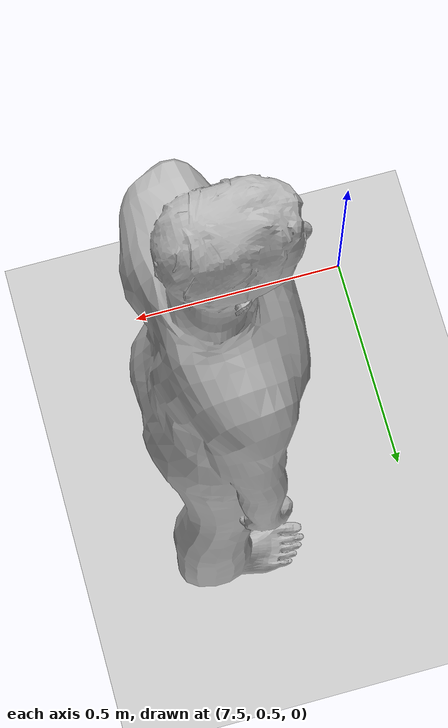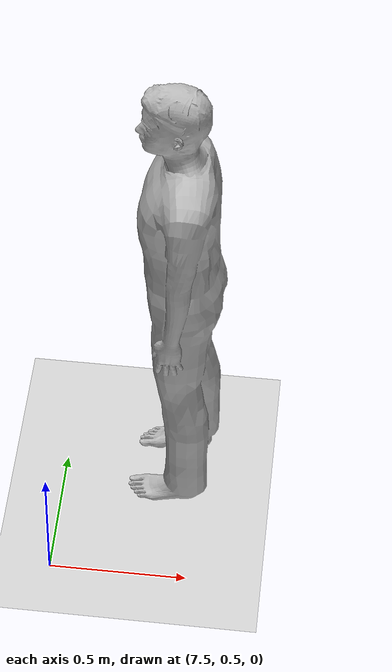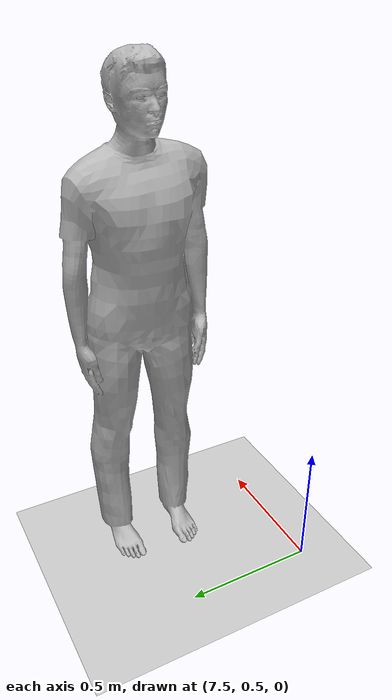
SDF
<?xml version="1.0" ?>
<sdf version="1.5">
  <world name="default">
    <!-- A global light source -->
    <include>
      <uri>model://sun</uri>
    </include>
    <!-- A ground plane -->
    <include>
      <uri>model://ground_plane</uri>
    </include>
    <include>
      <uri>model://asphalt_plane</uri>
    </include>
    <physics name='default_physics' default='0' type='ode'>
      <gravity>0 0 -9.8066</gravity>
      <ode>
        <solver>
          <type>quick</type>
          <iters>10</iters>
          <sor>1.3</sor>
          <use_dynamic_moi_rescaling>0</use_dynamic_moi_rescaling>
        </solver>
        <constraints>
          <cfm>0</cfm>
          <erp>0.2</erp>
          <contact_max_correcting_vel>100</contact_max_correcting_vel>
          <contact_surface_layer>0.001</contact_surface_layer>
        </constraints>
      </ode>
      <max_step_size>0.004</max_step_size>
      <real_time_factor>1</real_time_factor>
      <real_time_update_rate>250</real_time_update_rate>
      <magnetic_field>6.0e-6 2.3e-5 -4.2e-5</magnetic_field>
    </physics>
    <model name='person_standing'>
      <link name='link'>
        <inertial>
          <pose frame=''>0 -0.1 0.95 0 -0 0</pose>
          <mass>80</mass>
          <inertia>
            <ixx>24.88</ixx>
            <ixy>0</ixy>
            <ixz>0</ixz>
            <iyy>25.73</iyy>
            <iyz>0</iyz>
            <izz>2.48</izz>
          </inertia>
        </inertial>
        <collision name='bottom'>
          <pose frame=''>0 -0.1 0.01 0 -0 0</pose>
          <geometry>
            <box>
              <size>0.5 0.35 0.02</size>
            </box>
          </geometry>
          <max_contacts>10</max_contacts>
          <surface>
            <contact>
              <ode/>
            </contact>
            <bounce/>
            <friction>
              <torsional>
                <ode/>
              </torsional>
              <ode/>
            </friction>
          </surface>
        </collision>
        <collision name='person'>
          <pose frame=''>0 0 0.02 0.04 -0 0</pose>
          <geometry>
            <mesh>
              <uri>model://person_standing/meshes/standing.dae</uri>
            </mesh>
          </geometry>
          <max_contacts>10</max_contacts>
          <surface>
            <contact>
              <ode/>
            </contact>
            <bounce/>
            <friction>
              <torsional>
                <ode/>
              </torsional>
              <ode/>
            </friction>
          </surface>
        </collision>
        <visual name='visual'>
          <pose frame=''>0 0 0.02 0.04 -0 0</pose>
          <geometry>
            <mesh>
              <uri>model://person_standing/meshes/standing.dae</uri>
            </mesh>
          </geometry>
        </visual>
        <self_collide>0</self_collide>
        <enable_wind>0</enable_wind>
        <kinematic>0</kinematic>
      </link>
      <pose frame=''>8 1 0 0 -0 -1.6</pose>
    </model>
  </world>
</sdf>
